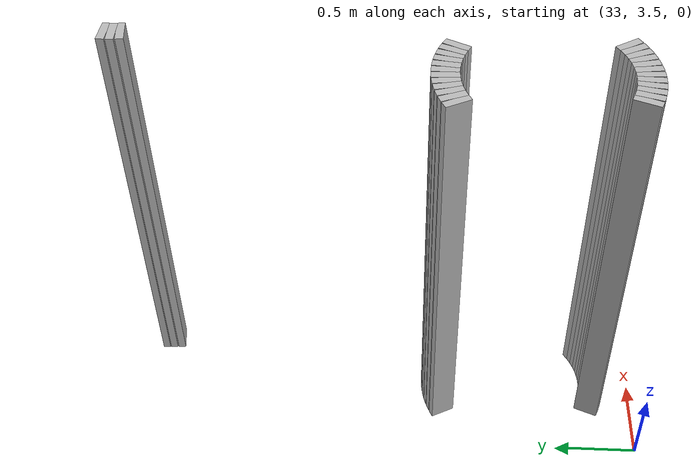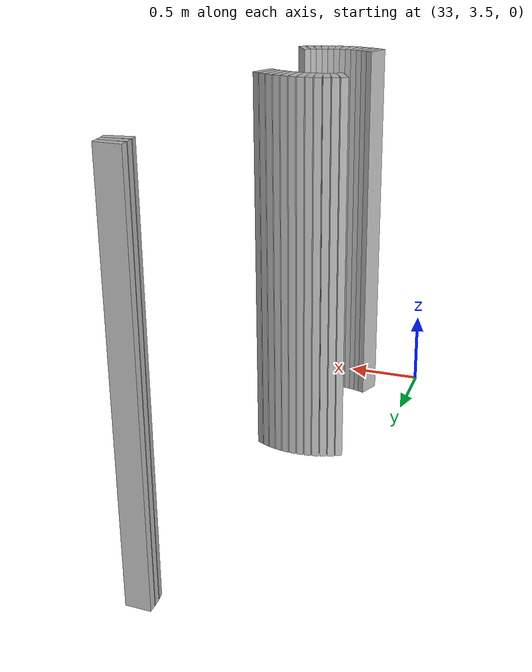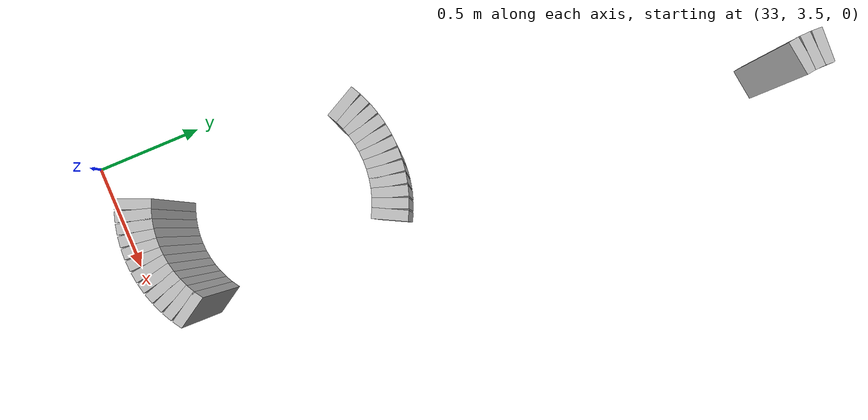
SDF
<sdf version="1.6">
 <model name="sps_2105">
  <static>1</static>
  <allow_auto_disable>0</allow_auto_disable>
  <link name="Wall1532">
   <collision name="collision"><geometry><box><size>0.0454474 0.15 2.5</size></box></geometry></collision>
   <visual name="visual">
    <geometry><box><size>0.0454474 0.15 2.5</size></box></geometry>
    <transparency>0.0</transparency>
   </visual>
   <pose>33.8064 6.50319 1.25 0 -0 1.70415</pose>
  </link>
  <link name="Wall1533">
   <collision name="collision"><geometry><box><size>0.0452007 0.15 2.5</size></box></geometry></collision>
   <visual name="visual">
    <geometry><box><size>0.0452007 0.15 2.5</size></box></geometry>
    <transparency>0.0</transparency>
   </visual>
   <pose>33.8025 6.54829 1.25 0 -0 1.60997</pose>
  </link>
  <link name="Wall1534">
   <collision name="collision"><geometry><box><size>0.0454446 0.15 2.5</size></box></geometry></collision>
   <visual name="visual">
    <geometry><box><size>0.0454446 0.15 2.5</size></box></geometry>
    <transparency>0.0</transparency>
   </visual>
   <pose>33.8025 6.59358 1.25 0 -0 1.53184</pose>
  </link>
  <link name="Wall2280">
   <collision name="collision"><geometry><box><size>0.045342 0.15 2.5</size></box></geometry></collision>
   <visual name="visual">
    <geometry><box><size>0.045342 0.15 2.5</size></box></geometry>
    <transparency>0.0</transparency>
   </visual>
   <pose>33.7907 3.82167 1.25 0 0 -2.57301</pose>
  </link>
  <link name="Wall2281">
   <collision name="collision"><geometry><box><size>0.0453183 0.15 2.5</size></box></geometry></collision>
   <visual name="visual">
    <geometry><box><size>0.0453183 0.15 2.5</size></box></geometry>
    <transparency>0.0</transparency>
   </visual>
   <pose>33.7515 3.79896 1.25 0 0 -2.65987</pose>
  </link>
  <link name="Wall2282">
   <collision name="collision"><geometry><box><size>0.0453596 0.15 2.5</size></box></geometry></collision>
   <visual name="visual">
    <geometry><box><size>0.0453596 0.15 2.5</size></box></geometry>
    <transparency>0.0</transparency>
   </visual>
   <pose>33.7105 3.77989 1.25 0 0 -2.75384</pose>
  </link>
  <link name="Wall2283">
   <collision name="collision"><geometry><box><size>0.0453611 0.15 2.5</size></box></geometry></collision>
   <visual name="visual">
    <geometry><box><size>0.0453611 0.15 2.5</size></box></geometry>
    <transparency>0.0</transparency>
   </visual>
   <pose>33.6679 3.76442 1.25 0 0 -2.83261</pose>
  </link>
  <link name="Wall2284">
   <collision name="collision"><geometry><box><size>0.045468 0.15 2.5</size></box></geometry></collision>
   <visual name="visual">
    <geometry><box><size>0.045468 0.15 2.5</size></box></geometry>
    <transparency>0.0</transparency>
   </visual>
   <pose>33.624 3.7527 1.25 0 0 -2.92787</pose>
  </link>
  <link name="Wall2285">
   <collision name="collision"><geometry><box><size>0.0451973 0.15 2.5</size></box></geometry></collision>
   <visual name="visual">
    <geometry><box><size>0.0451973 0.15 2.5</size></box></geometry>
    <transparency>0.0</transparency>
   </visual>
   <pose>33.5794 3.74489 1.25 0 0 -3.00886</pose>
  </link>
  <link name="Wall2286">
   <collision name="collision"><geometry><box><size>0.0453938 0.15 2.5</size></box></geometry></collision>
   <visual name="visual">
    <geometry><box><size>0.0453938 0.15 2.5</size></box></geometry>
    <transparency>0.0</transparency>
   </visual>
   <pose>33.5344 3.74089 1.25 0 0 -3.09721</pose>
  </link>
  <link name="Wall2287">
   <collision name="collision"><geometry><box><size>0.0454548 0.15 2.5</size></box></geometry></collision>
   <visual name="visual">
    <geometry><box><size>0.0454548 0.15 2.5</size></box></geometry>
    <transparency>0.0</transparency>
   </visual>
   <pose>33.489 3.74089 1.25 0 -0 3.09727</pose>
  </link>
  <link name="Wall2288">
   <collision name="collision"><geometry><box><size>0.0454394 0.15 2.5</size></box></geometry></collision>
   <visual name="visual">
    <geometry><box><size>0.0454394 0.15 2.5</size></box></geometry>
    <transparency>0.0</transparency>
   </visual>
   <pose>33.4437 3.74489 1.25 0 -0 3.00957</pose>
  </link>
  <link name="Wall2289">
   <collision name="collision"><geometry><box><size>0.0452689 0.15 2.5</size></box></geometry></collision>
   <visual name="visual">
    <geometry><box><size>0.0452689 0.15 2.5</size></box></geometry>
    <transparency>0.0</transparency>
   </visual>
   <pose>33.3991 3.75279 1.25 0 -0 2.92278</pose>
  </link>
  <link name="Wall2290">
   <collision name="collision"><geometry><box><size>0.0454804 0.15 2.5</size></box></geometry></collision>
   <visual name="visual">
    <geometry><box><size>0.0454804 0.15 2.5</size></box></geometry>
    <transparency>0.0</transparency>
   </visual>
   <pose>33.3553 3.76451 1.25 0 -0 2.83767</pose>
  </link>
  <link name="Wall2291">
   <collision name="collision"><geometry><box><size>0.0452834 0.15 2.5</size></box></geometry></collision>
   <visual name="visual">
    <geometry><box><size>0.0452834 0.15 2.5</size></box></geometry>
    <transparency>0.0</transparency>
   </visual>
   <pose>33.3127 3.78001 1.25 0 -0 2.74732</pose>
  </link>
  <link name="Wall2317">
   <collision name="collision"><geometry><box><size>0.0453724 0.15 2.5</size></box></geometry></collision>
   <visual name="visual">
    <geometry><box><size>0.0453724 0.15 2.5</size></box></geometry>
    <transparency>0.0</transparency>
   </visual>
   <pose>33.272 4.72078 1.25 0 -0 0.481095</pose>
  </link>
  <link name="Wall2318">
   <collision name="collision"><geometry><box><size>0.0454525 0.15 2.5</size></box></geometry></collision>
   <visual name="visual">
    <geometry><box><size>0.0454525 0.15 2.5</size></box></geometry>
    <transparency>0.0</transparency>
   </visual>
   <pose>33.3131 4.73997 1.25 0 -0 0.392725</pose>
  </link>
  <link name="Wall2319">
   <collision name="collision"><geometry><box><size>0.0453057 0.15 2.5</size></box></geometry></collision>
   <visual name="visual">
    <geometry><box><size>0.0453057 0.15 2.5</size></box></geometry>
    <transparency>0.0</transparency>
   </visual>
   <pose>33.3557 4.75548 1.25 0 -0 0.305135</pose>
  </link>
  <link name="Wall2320">
   <collision name="collision"><geometry><box><size>0.0454476 0.15 2.5</size></box></geometry></collision>
   <visual name="visual">
    <geometry><box><size>0.0454476 0.15 2.5</size></box></geometry>
    <transparency>0.0</transparency>
   </visual>
   <pose>33.3995 4.7672 1.25 0 -0 0.217941</pose>
  </link>
  <link name="Wall2321">
   <collision name="collision"><geometry><box><size>0.0453551 0.15 2.5</size></box></geometry></collision>
   <visual name="visual">
    <geometry><box><size>0.0453551 0.15 2.5</size></box></geometry>
    <transparency>0.0</transparency>
   </visual>
   <pose>33.4441 4.77501 1.25 0 -0 0.128194</pose>
  </link>
  <link name="Wall2322">
   <collision name="collision"><geometry><box><size>0.0452719 0.15 2.5</size></box></geometry></collision>
   <visual name="visual">
    <geometry><box><size>0.0452719 0.15 2.5</size></box></geometry>
    <transparency>0.0</transparency>
   </visual>
   <pose>33.4892 4.77891 1.25 0 -0 0.044505</pose>
  </link>
  <link name="Wall2323">
   <collision name="collision"><geometry><box><size>0.0454548 0.15 2.5</size></box></geometry></collision>
   <visual name="visual">
    <geometry><box><size>0.0454548 0.15 2.5</size></box></geometry>
    <transparency>0.0</transparency>
   </visual>
   <pose>33.5346 4.77891 1.25 0 0 -0.0443258</pose>
  </link>
  <link name="Wall2324">
   <collision name="collision"><geometry><box><size>0.0453869 0.15 2.5</size></box></geometry></collision>
   <visual name="visual">
    <geometry><box><size>0.0453869 0.15 2.5</size></box></geometry>
    <transparency>0.0</transparency>
   </visual>
   <pose>33.5798 4.77489 1.25 0 0 -0.133529</pose>
  </link>
  <link name="Wall2325">
   <collision name="collision"><geometry><box><size>0.0452557 0.15 2.5</size></box></geometry></collision>
   <visual name="visual">
    <geometry><box><size>0.0452557 0.15 2.5</size></box></geometry>
    <transparency>0.0</transparency>
   </visual>
   <pose>33.6244 4.76698 1.25 0 0 -0.217499</pose>
  </link>
  <link name="Wall2326">
   <collision name="collision"><geometry><box><size>0.0454804 0.15 2.5</size></box></geometry></collision>
   <visual name="visual">
    <geometry><box><size>0.0454804 0.15 2.5</size></box></geometry>
    <transparency>0.0</transparency>
   </visual>
   <pose>33.6681 4.75529 1.25 0 0 -0.303926</pose>
  </link>
  <link name="Wall2327">
   <collision name="collision"><geometry><box><size>0.0452834 0.15 2.5</size></box></geometry></collision>
   <visual name="visual">
    <geometry><box><size>0.0452834 0.15 2.5</size></box></geometry>
    <transparency>0.0</transparency>
   </visual>
   <pose>33.7107 4.73979 1.25 0 0 -0.394273</pose>
  </link>
  <link name="Wall2328">
   <collision name="collision"><geometry><box><size>0.045288 0.15 2.5</size></box></geometry></collision>
   <visual name="visual">
    <geometry><box><size>0.045288 0.15 2.5</size></box></geometry>
    <transparency>0.0</transparency>
   </visual>
   <pose>33.7518 4.72069 1.25 0 0 -0.47751</pose>
  </link>
 </model>
</sdf>
